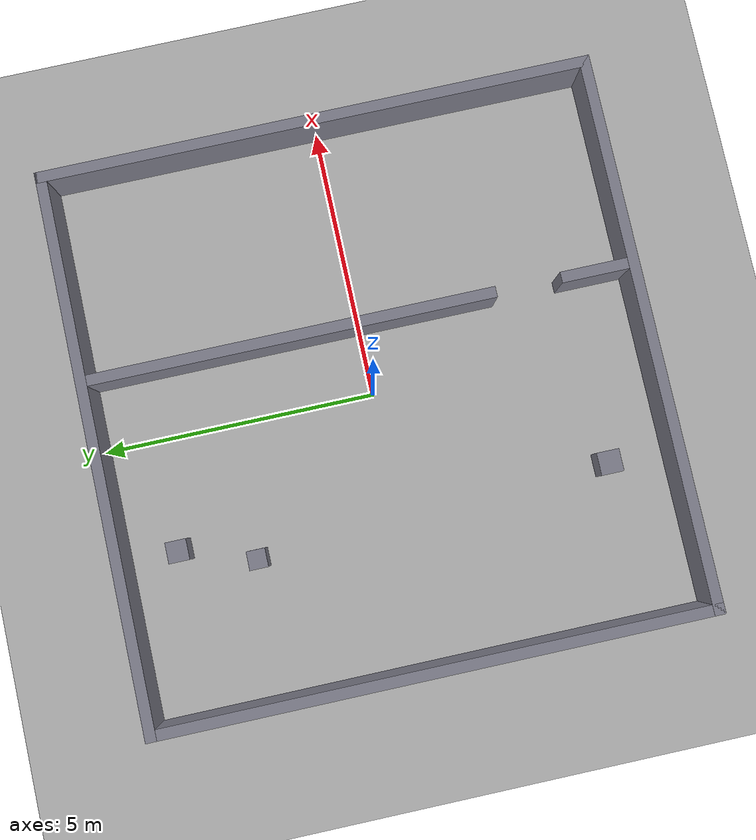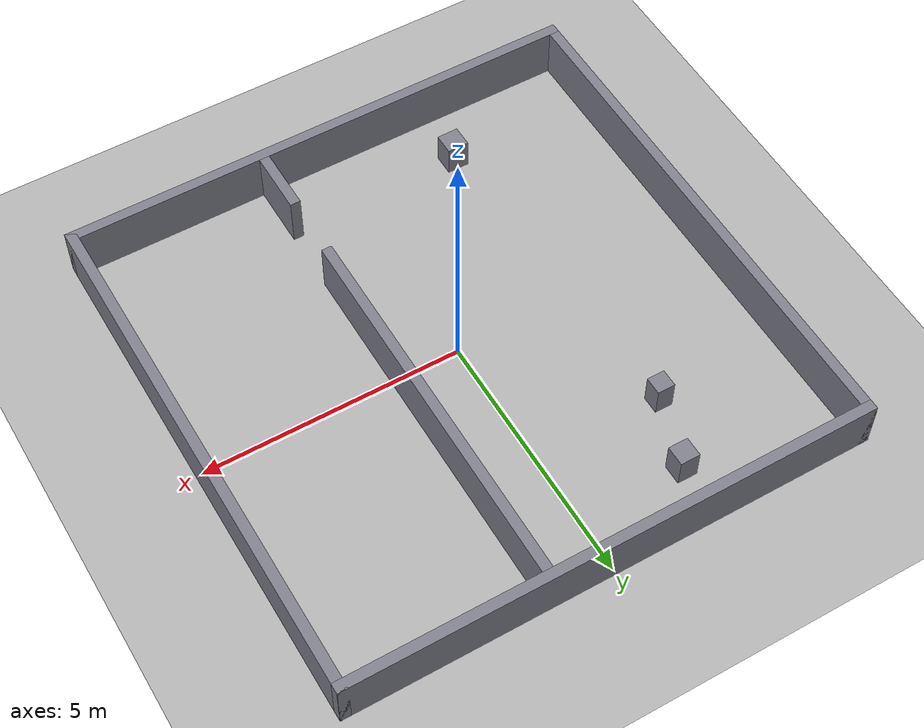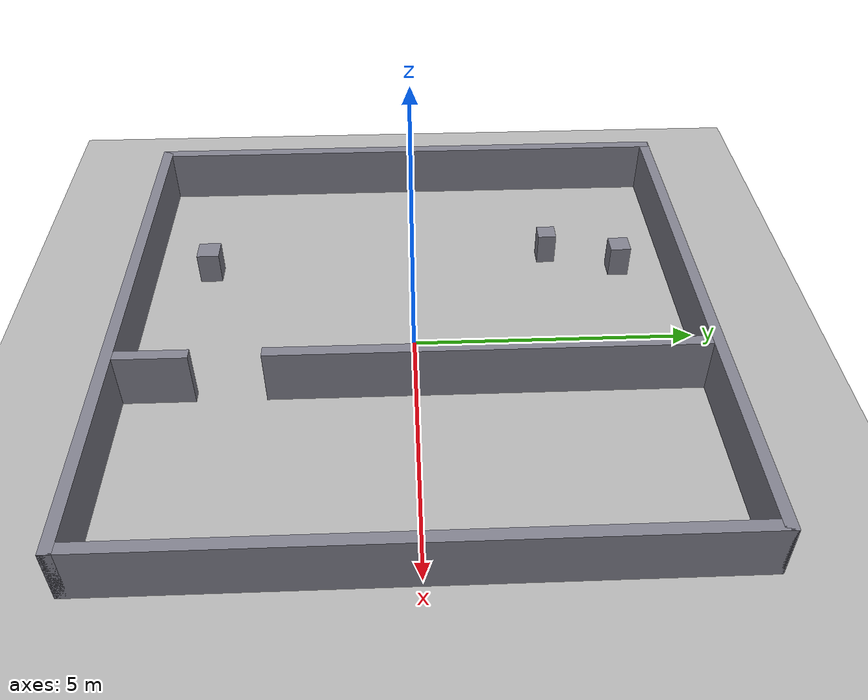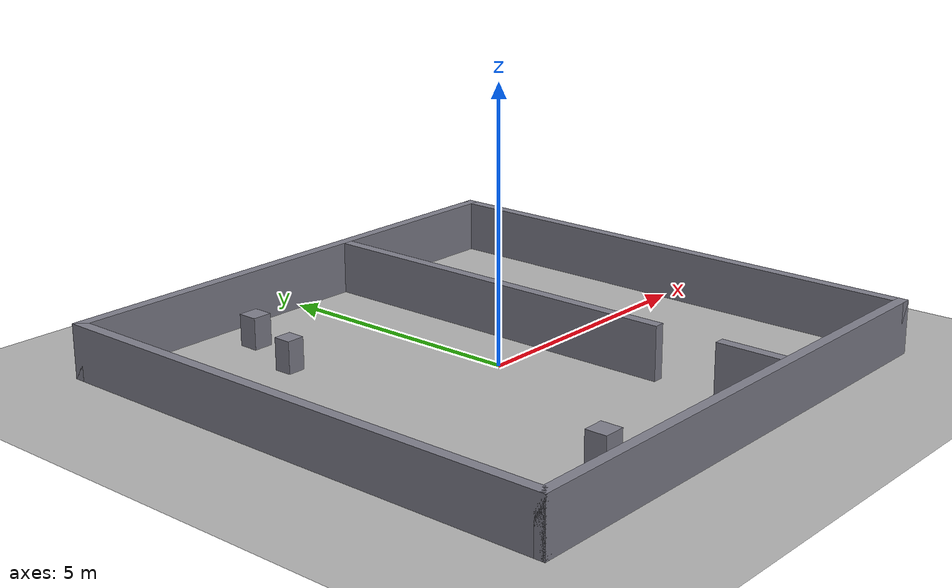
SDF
<?xml version="1.0"?>
<sdf version="1.10">
  <world name="scenario_8">
    <physics name="fast" type="ignored">
      <max_step_size>0.005</max_step_size>
      <real_time_factor>1.0</real_time_factor>
      <real_time_update_rate>200</real_time_update_rate>
    </physics>
    <plugin filename="gz-sim-physics-system" name="gz::sim::systems::Physics"/>
    <plugin filename="gz-sim-user-commands-system" name="gz::sim::systems::UserCommands"/>
    <plugin filename="gz-sim-scene-broadcaster-system" name="gz::sim::systems::SceneBroadcaster"/>
    <plugin filename="gz-sim-sensors-system" name="gz::sim::systems::Sensors">
      <render_engine>ogre2</render_engine>
    </plugin>
    <light type="directional" name="sun">
      <cast_shadows>false</cast_shadows>
      <pose>0 0 10 0 0 0</pose>
      <diffuse>0.9 0.9 0.9 1</diffuse>
      <direction>-0.5 0.2 -0.9</direction>
    </light>
    <model name="ground_plane">
      <static>true</static>
      <link name="link">
        <collision name="c"><geometry><plane><normal>0 0 1</normal><size>20 20</size></plane></geometry></collision>
        <visual name="v"><geometry><plane><normal>0 0 1</normal><size>20 20</size></plane></geometry>
          <material><ambient>0.7 0.7 0.7 1</ambient><diffuse>0.7 0.7 0.7 1</diffuse></material></visual>
      </link>
    </model>
    <model name="box_0">
      <static>true</static>
      <pose>0.0 5.0 0.5 0 0 0</pose>
      <link name="link">
        <collision name="c"><geometry><box><size>10.2 0.2 1.0</size></box></geometry></collision>
        <visual name="v"><geometry><box><size>10.2 0.2 1.0</size></box></geometry>
          <material><ambient>0.5 0.5 0.55 1</ambient><diffuse>0.5 0.5 0.55 1</diffuse></material></visual>
      </link>
    </model>
    <model name="box_1">
      <static>true</static>
      <pose>0.0 -5.0 0.5 0 0 0</pose>
      <link name="link">
        <collision name="c"><geometry><box><size>10.2 0.2 1.0</size></box></geometry></collision>
        <visual name="v"><geometry><box><size>10.2 0.2 1.0</size></box></geometry>
          <material><ambient>0.5 0.5 0.55 1</ambient><diffuse>0.5 0.5 0.55 1</diffuse></material></visual>
      </link>
    </model>
    <model name="box_2">
      <static>true</static>
      <pose>5.0 0.0 0.5 0 0 0</pose>
      <link name="link">
        <collision name="c"><geometry><box><size>0.2 10.2 1.0</size></box></geometry></collision>
        <visual name="v"><geometry><box><size>0.2 10.2 1.0</size></box></geometry>
          <material><ambient>0.5 0.5 0.55 1</ambient><diffuse>0.5 0.5 0.55 1</diffuse></material></visual>
      </link>
    </model>
    <model name="box_3">
      <static>true</static>
      <pose>-5.0 0.0 0.5 0 0 0</pose>
      <link name="link">
        <collision name="c"><geometry><box><size>0.2 10.2 1.0</size></box></geometry></collision>
        <visual name="v"><geometry><box><size>0.2 10.2 1.0</size></box></geometry>
          <material><ambient>0.5 0.5 0.55 1</ambient><diffuse>0.5 0.5 0.55 1</diffuse></material></visual>
      </link>
    </model>
    <model name="box_4">
      <static>true</static>
      <pose>1.23 -4.2881108028512 0.5 0 0 0</pose>
      <link name="link">
        <collision name="c"><geometry><box><size>0.2 1.2237783942975997 1.0</size></box></geometry></collision>
        <visual name="v"><geometry><box><size>0.2 1.2237783942975997 1.0</size></box></geometry>
          <material><ambient>0.5 0.5 0.55 1</ambient><diffuse>0.5 0.5 0.55 1</diffuse></material></visual>
      </link>
    </model>
    <model name="box_5">
      <static>true</static>
      <pose>1.23 1.2018891971487997 0.5 0 0 0</pose>
      <link name="link">
        <collision name="c"><geometry><box><size>0.2 7.396221605702401 1.0</size></box></geometry></collision>
        <visual name="v"><geometry><box><size>0.2 7.396221605702401 1.0</size></box></geometry>
          <material><ambient>0.5 0.5 0.55 1</ambient><diffuse>0.5 0.5 0.55 1</diffuse></material></visual>
      </link>
    </model>
    <model name="box_6">
      <static>true</static>
      <pose>-2.02 3.99 0.3 0 0 0</pose>
      <link name="link">
        <collision name="c"><geometry><box><size>0.38 0.38 0.6</size></box></geometry></collision>
        <visual name="v"><geometry><box><size>0.38 0.38 0.6</size></box></geometry>
          <material><ambient>0.5 0.5 0.55 1</ambient><diffuse>0.5 0.5 0.55 1</diffuse></material></visual>
      </link>
    </model>
    <model name="box_7">
      <static>true</static>
      <pose>-2.46 2.64 0.3 0 0 0</pose>
      <link name="link">
        <collision name="c"><geometry><box><size>0.34 0.34 0.6</size></box></geometry></collision>
        <visual name="v"><geometry><box><size>0.34 0.34 0.6</size></box></geometry>
          <material><ambient>0.5 0.5 0.55 1</ambient><diffuse>0.5 0.5 0.55 1</diffuse></material></visual>
      </link>
    </model>
    <model name="box_8">
      <static>true</static>
      <pose>-2.13 -3.84 0.3 0 0 0</pose>
      <link name="link">
        <collision name="c"><geometry><box><size>0.41 0.41 0.6</size></box></geometry></collision>
        <visual name="v"><geometry><box><size>0.41 0.41 0.6</size></box></geometry>
          <material><ambient>0.5 0.5 0.55 1</ambient><diffuse>0.5 0.5 0.55 1</diffuse></material></visual>
      </link>
    </model>
  </world>
</sdf>
